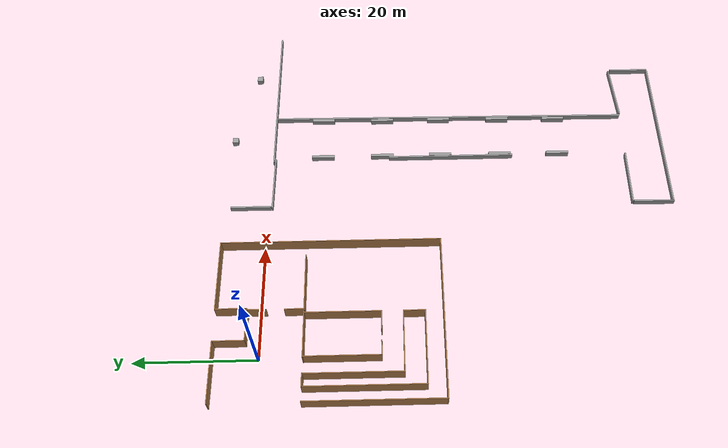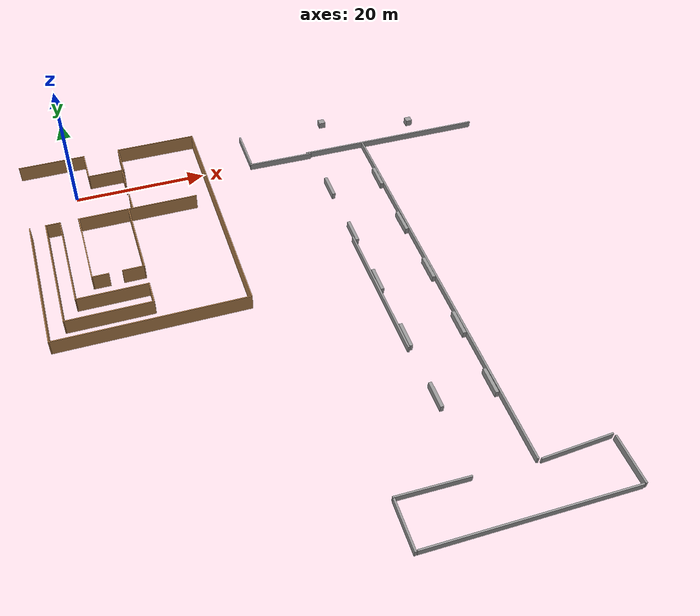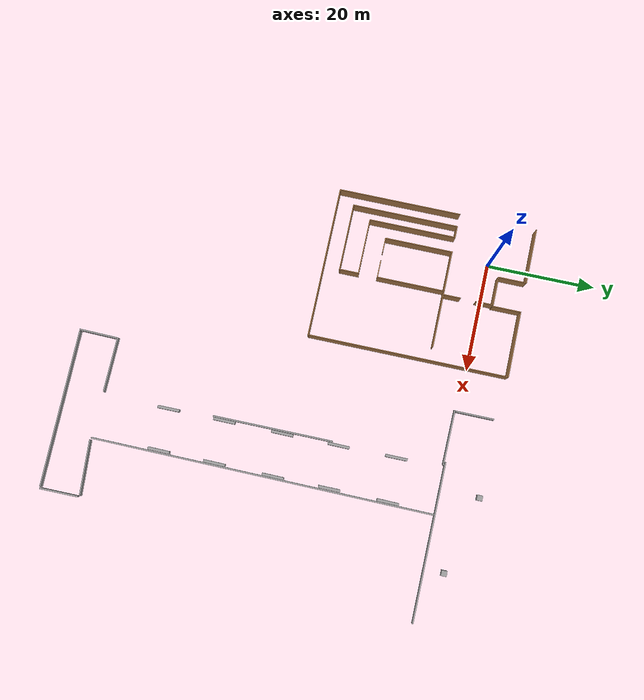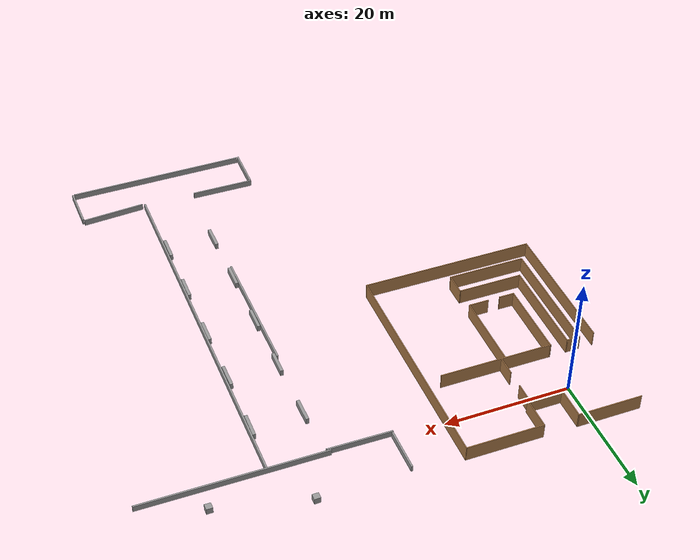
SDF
<sdf version="1.7">
 <world name="default">
  <gravity>0 0 -9.8</gravity>
  <magnetic_field>6e-06 2.3e-05 -4.2e-05</magnetic_field>
  <atmosphere type="adiabatic"/>
  <physics name="default_physics" default="0" type="ode">
   <max_step_size>0.001</max_step_size>
   <real_time_factor>1</real_time_factor>
   <real_time_update_rate>1000</real_time_update_rate>
  </physics>
  <scene>
   <ambient>0.4 0.4 0.4 1</ambient>
   <background>0.7 0.7 0.7 1</background>
   <shadows>1</shadows>
   <grid>0</grid>
   <origin_visual>0</origin_visual>
  </scene>
  <spherical_coordinates>
   <surface_model>EARTH_WGS84</surface_model>
   <latitude_deg>0</latitude_deg>
   <longitude_deg>0</longitude_deg>
   <elevation>0</elevation>
   <heading_deg>0</heading_deg>
  </spherical_coordinates>
  <light name="RetailShop_CeilingLight_001" type="point">
   <pose>2.77442 -3.62815 3.17847 0 -0 0</pose>
   <diffuse>0.5 0.5 0.5 1</diffuse>
   <specular>0.1 0.1 0.1 1</specular>
   <attenuation>
    <range>20</range>
    <constant>0.32</constant>
    <linear>0.01</linear>
    <quadratic>0.03</quadratic>
   </attenuation>
   <cast_shadows>0</cast_shadows>
   <direction>0 0 -1</direction>
   <spot><inner_angle>0</inner_angle><outer_angle>0</outer_angle><falloff>0</falloff></spot>
  </light>
  <light name="RetailShop_CeilingLight_002" type="point">
   <pose>5.38399 -5.38371 3.17847 0 -0 0</pose>
   <diffuse>0.5 0.5 0.5 1</diffuse>
   <specular>0.1 0.1 0.1 1</specular>
   <attenuation>
    <range>20</range>
    <constant>0.32</constant>
    <linear>0.01</linear>
    <quadratic>0.03</quadratic>
   </attenuation>
   <cast_shadows>0</cast_shadows>
   <direction>0 0 -1</direction>
   <spot><inner_angle>0</inner_angle><outer_angle>0</outer_angle><falloff>0</falloff></spot>
  </light>
  <light name="RetailShop_CeilingLight_003" type="point">
   <pose>5.38399 0.04192 3.17847 0 -0 0</pose>
   <diffuse>0.5 0.5 0.5 1</diffuse>
   <specular>0.1 0.1 0.1 1</specular>
   <attenuation>
    <range>20</range>
    <constant>0.32</constant>
    <linear>0.01</linear>
    <quadratic>0.03</quadratic>
   </attenuation>
   <cast_shadows>0</cast_shadows>
   <direction>0 0 -1</direction>
   <spot><inner_angle>0</inner_angle><outer_angle>0</outer_angle><falloff>0</falloff></spot>
  </light>
  <light name="RetailShop_CeilingLight_004" type="point">
   <pose>-3.21067 -5.38371 3.17847 0 -0 0</pose>
   <diffuse>0.5 0.5 0.5 1</diffuse>
   <specular>0.1 0.1 0.1 1</specular>
   <attenuation>
    <range>20</range>
    <constant>0.32</constant>
    <linear>0.01</linear>
    <quadratic>0.03</quadratic>
   </attenuation>
   <cast_shadows>0</cast_shadows>
   <direction>0 0 -1</direction>
   <spot><inner_angle>0</inner_angle><outer_angle>0</outer_angle><falloff>0</falloff></spot>
  </light>
  <light name="RetailShop_CeilingLight_005" type="point">
   <pose>-3.271 2.68593 3.17847 0 -0 0</pose>
   <diffuse>0.5 0.5 0.5 1</diffuse>
   <specular>0.1 0.1 0.1 1</specular>
   <attenuation>
    <range>20</range>
    <constant>0.32</constant>
    <linear>0.01</linear>
    <quadratic>0.03</quadratic>
   </attenuation>
   <cast_shadows>0</cast_shadows>
   <direction>0 0 -1</direction>
   <spot><inner_angle>0</inner_angle><outer_angle>0</outer_angle><falloff>0</falloff></spot>
  </light>
  <light name="RetailShop_CeilingLight_006" type="point">
   <pose>1.4932 4.69237 3.17847 0 -0 0</pose>
   <diffuse>0.5 0.5 0.5 1</diffuse>
   <specular>0.1 0.1 0.1 1</specular>
   <attenuation>
    <range>20</range>
    <constant>0.32</constant>
    <linear>0.01</linear>
    <quadratic>0.03</quadratic>
   </attenuation>
   <cast_shadows>0</cast_shadows>
   <direction>0 0 -1</direction>
   <spot><inner_angle>0</inner_angle><outer_angle>0</outer_angle><falloff>0</falloff></spot>
  </light>
  <audio><device>default</device></audio>
  <model name="wall10">
   <pose>3.93507 3.6415 0 0 -0 0</pose>
   <link name="Wall_36">
    <collision name="Wall_36_Collision">
     <geometry><box><size>5.5 0.15 2.5</size></box></geometry>
     <pose>0 0 1.25 0 -0 0</pose>
    </collision>
    <visual name="Wall_36_Visual">
     <pose>0 0 1.25 0 -0 0</pose>
     <geometry><box><size>5.5 0.15 2.5</size></box></geometry>
     <material>
      <script><uri>file://media/materials/scripts/gazebo.material</uri><name>Gazebo/Wood</name></script>
      <ambient>1 1 1 1</ambient>
     </material>
     <meta><layer>0</layer></meta>
    </visual>
    <pose>1.18507 -1.53348 0 0 -0 6e-06</pose>
   </link>
   <link name="Wall_38">
    <collision name="Wall_38_Collision">
     <geometry><box><size>5.25 0.15 2.5</size></box></geometry>
     <pose>0 0 1.25 0 -0 0</pose>
    </collision>
    <visual name="Wall_38_Visual">
     <pose>0 0 1.25 0 -0 0</pose>
     <geometry><box><size>5.25 0.15 2.5</size></box></geometry>
     <material>
      <script><uri>file://media/materials/scripts/gazebo.material</uri><name>Gazebo/Wood</name></script>
      <ambient>1 1 1 1</ambient>
     </material>
     <meta><layer>0</layer></meta>
    </visual>
    <pose>-1.49007 1.0165 0 0 -0 1.5708</pose>
   </link>
   <static>1</static>
  </model>
  <model name="bigwall1">
   <pose>10.06 -11.092 0 0 -0 0</pose>
   <link name="Wall_40">
    <collision name="Wall_40_Collision">
     <geometry><box><size>5.25 0.15 2.5</size></box></geometry>
     <pose>0 0 1.25 0 -0 0</pose>
    </collision>
    <visual name="Wall_40_Visual">
     <pose>0 0 1.25 0 -0 0</pose>
     <geometry><box><size>5.25 0.15 2.5</size></box></geometry>
     <material>
      <script><uri>file://media/materials/scripts/gazebo.material</uri><name>Gazebo/Wood</name></script>
      <ambient>1 1 1 1</ambient>
     </material>
     <meta><layer>0</layer></meta>
    </visual>
    <pose>-2.115 15.75 0 0 -0 1.5708</pose>
   </link>
   <link name="Wall_42">
    <collision name="Wall_42_Collision">
     <geometry><box><size>12.25 0.15 2.5</size></box></geometry>
     <pose>0 0 1.25 0 -0 0</pose>
    </collision>
    <visual name="Wall_42_Visual">
     <pose>0 0 1.25 0 -0 0</pose>
     <geometry><box><size>12.25 0.15 2.5</size></box></geometry>
     <material>
      <script><uri>file://media/materials/scripts/gazebo.material</uri><name>Gazebo/Wood</name></script>
      <ambient>1 1 1 1</ambient>
     </material>
     <meta><layer>0</layer></meta>
    </visual>
    <pose>3.935 18.3 0 0 -0 0</pose>
   </link>
   <link name="Wall_49">
    <collision name="Wall_49_Collision">
     <geometry><box><size>36.75 0.15 2.5</size></box></geometry>
     <pose>0 0 1.25 0 -0 0</pose>
    </collision>
    <visual name="Wall_49_Visual">
     <pose>0 0 1.25 0 -0 0</pose>
     <geometry><box><size>36.75 0.15 2.5</size></box></geometry>
     <material>
      <script><uri>file://media/materials/scripts/gazebo.material</uri><name>Gazebo/Wood</name></script>
      <ambient>1 1 1 1</ambient>
     </material>
     <meta><layer>0</layer></meta>
    </visual>
    <pose>9.985 0 0 0 -0 -1.5708</pose>
   </link>
   <static>1</static>
  </model>
  <model name="wall_40">
   <pose>-2.605 3.6415 0 0 -0 0</pose>
   <link name="Wall_96">
    <collision name="Wall_96_Collision">
     <geometry><box><size>10.25 0.15 2.5</size></box></geometry>
     <pose>0 0 1.25 0 -0 0</pose>
    </collision>
    <visual name="Wall_96_Visual">
     <pose>0 0 1.25 0 -0 0</pose>
     <geometry><box><size>10.25 0.15 2.5</size></box></geometry>
     <material>
      <script><uri>file://media/materials/scripts/gazebo.material</uri><name>Gazebo/Wood</name></script>
      <ambient>1 1 1 1</ambient>
     </material>
     <meta><layer>0</layer></meta>
    </visual>
    <pose>0 3.5665 0 0 -0 3.14159</pose>
   </link>
   <static>1</static>
  </model>
  <model name="WALL_C">
   <pose>6.195 -14.7335 0 0 -0 0</pose>
   <link name="Wall_98">
    <collision name="Wall_98_Collision">
     <geometry><box><size>27.85 0.15 2.5</size></box></geometry>
     <pose>0 0 1.25 0 -0 0</pose>
    </collision>
    <visual name="Wall_98_Visual">
     <pose>0 0 1.25 0 -0 0</pose>
     <geometry><box><size>27.85 0.15 2.5</size></box></geometry>
     <material>
      <script><uri>file://media/materials/scripts/gazebo.material</uri><name>Gazebo/Wood</name></script>
      <ambient>1 1 1 1</ambient>
     </material>
     <meta><layer>0</layer></meta>
    </visual>
    <pose>-0 -14.6585 0 0 -0 3.14159</pose>
   </link>
   <static>1</static>
  </model>
  <model name="WALL_D">
   <pose>-3.865 -14.7335 0 0 -0 0</pose>
   <link name="Wall_100">
    <collision name="Wall_100_Collision">
     <geometry><box><size>22.5 0.15 2.5</size></box></geometry>
     <pose>0 0 1.25 0 -0 0</pose>
    </collision>
    <visual name="Wall_100_Visual">
     <pose>0 0 1.25 0 -0 0</pose>
     <geometry><box><size>22.5 0.15 2.5</size></box></geometry>
     <material>
      <script><uri>file://media/materials/scripts/gazebo.material</uri><name>Gazebo/Wood</name></script>
      <ambient>1 1 1 1</ambient>
     </material>
     <meta><layer>0</layer></meta>
    </visual>
    <pose>-3.79 -3.4835 0 0 -0 1.5708</pose>
   </link>
   <static>1</static>
  </model>
  <light name="RetailShop_CeilingLight_006_clone" type="point">
   <pose>13.2087 -12.9727 3.17847 0 -0 0</pose>
   <diffuse>0.5 0.5 0.5 1</diffuse>
   <specular>0.1 0.1 0.1 1</specular>
   <direction>0 0 -1</direction>
   <attenuation>
    <range>20</range>
    <constant>0.32</constant>
    <linear>0.01</linear>
    <quadratic>0.03</quadratic>
   </attenuation>
   <cast_shadows>0</cast_shadows>
   <spot><inner_angle>0</inner_angle><outer_angle>0</outer_angle><falloff>0</falloff></spot>
  </light>
  <light name="RetailShop_CeilingLight_001_clone_clone" type="point">
   <pose>13.1607 -16.7337 3.17847 0 -0 0</pose>
   <diffuse>0.5 0.5 0.5 1</diffuse>
   <specular>0.1 0.1 0.1 1</specular>
   <direction>0 0 -1</direction>
   <attenuation>
    <range>20</range>
    <constant>0.32</constant>
    <linear>0.01</linear>
    <quadratic>0.03</quadratic>
   </attenuation>
   <cast_shadows>0</cast_shadows>
   <spot><inner_angle>0</inner_angle><outer_angle>0</outer_angle><falloff>0</falloff></spot>
  </light>
  <light name="RetailShop_CeilingLight_002_clone_clone" type="point">
   <pose>13.1202 -20.5297 3.17847 0 -0 0</pose>
   <diffuse>0.5 0.5 0.5 1</diffuse>
   <specular>0.1 0.1 0.1 1</specular>
   <direction>0 0 -1</direction>
   <attenuation>
    <range>20</range>
    <constant>0.32</constant>
    <linear>0.01</linear>
    <quadratic>0.03</quadratic>
   </attenuation>
   <cast_shadows>0</cast_shadows>
   <spot><inner_angle>0</inner_angle><outer_angle>0</outer_angle><falloff>0</falloff></spot>
  </light>
  <light name="RetailShop_CeilingLight_003_clone_clone" type="point">
   <pose>13.1202 -24.511 3.17847 0 -0 0</pose>
   <diffuse>0.5 0.5 0.5 1</diffuse>
   <specular>0.1 0.1 0.1 1</specular>
   <direction>0 0 -1</direction>
   <attenuation>
    <range>20</range>
    <constant>0.32</constant>
    <linear>0.01</linear>
    <quadratic>0.03</quadratic>
   </attenuation>
   <cast_shadows>0</cast_shadows>
   <spot><inner_angle>0</inner_angle><outer_angle>0</outer_angle><falloff>0</falloff></spot>
  </light>
  <model name="WALL_G">
   <pose>6.097 -3.5585 0 0 -0 0</pose>
   <link name="Wall_0">
    <collision name="Wall_0_Collision">
     <geometry><box><size>2.15 0.15 2.5</size></box></geometry>
     <pose>0 0 1.25 0 -0 0</pose>
    </collision>
    <visual name="Wall_0_Visual">
     <pose>0 0 1.25 0 -0 0</pose>
     <geometry><box><size>2.15 0.15 2.5</size></box></geometry>
     <material>
      <script><uri>file://media/materials/scripts/gazebo.material</uri><name>Gazebo/Wood</name></script>
      <ambient>1 1 1 1</ambient>
     </material>
     <meta><layer>0</layer></meta>
    </visual>
    <pose>-10.297 -3.4835 0 0 -0 0</pose>
   </link>
   <link name="Wall_9">
    <collision name="Wall_9_Collision">
     <geometry><box><size>18 0.15 2.5</size></box></geometry>
     <pose>0 0 1.25 0 -0 0</pose>
    </collision>
    <visual name="Wall_9_Visual">
     <pose>0 0 1.25 0 -0 0</pose>
     <geometry><box><size>18 0.15 2.5</size></box></geometry>
     <material>
      <script><uri>file://media/materials/scripts/gazebo.material</uri><name>Gazebo/Wood</name></script>
      <ambient>1 1 1 1</ambient>
     </material>
     <meta><layer>0</layer></meta>
    </visual>
    <pose>2.372 -3.4835 0 0 -0 0</pose>
   </link>
   <static>1</static>
  </model>
  <model name="WALL_F">
   <pose>3.885 -2.467 0 0 -0 0</pose>
   <link name="Wall_11">
    <collision name="Wall_11_Collision">
     <geometry><box><size>3.25 0.15 2.5</size></box></geometry>
     <pose>0 0 1.25 0 -0 0</pose>
    </collision>
    <visual name="Wall_11_Visual">
     <pose>0 0 1.25 0 -0 0</pose>
     <geometry><box><size>3.25 0.15 2.5</size></box></geometry>
     <material>
      <script><uri>file://media/materials/scripts/gazebo.material</uri><name>Gazebo/Wood</name></script>
      <ambient>1 1 1 1</ambient>
     </material>
     <meta><layer>0</layer></meta>
    </visual>
    <pose>3.81 -3.025 0 0 -0 1.5708</pose>
   </link>
   <link name="Wall_13">
    <collision name="Wall_13_Collision">
     <geometry><box><size>3.25 0.15 2.5</size></box></geometry>
     <pose>0 0 1.25 0 -0 0</pose>
    </collision>
    <visual name="Wall_13_Visual">
     <pose>0 0 1.25 0 -0 0</pose>
     <geometry><box><size>3.25 0.15 2.5</size></box></geometry>
     <material>
      <script><uri>file://media/materials/scripts/gazebo.material</uri><name>Gazebo/Wood</name></script>
      <ambient>1 1 1 1</ambient>
     </material>
     <meta><layer>0</layer></meta>
    </visual>
    <pose>3.81 3.025 0 0 -0 -1.5708</pose>
   </link>
   <static>1</static>
  </model>
  <model name="WALL_H1">
   <pose>0.875 -13.2335 0 0 -0 0</pose>
   <link name="Wall_21">
    <collision name="Wall_21_Collision">
     <geometry><box><size>19.5 0.15 2.5</size></box></geometry>
     <pose>0 0 1.25 0 -0 0</pose>
    </collision>
    <visual name="Wall_21_Visual">
     <pose>0 0 1.25 0 -0 0</pose>
     <geometry><box><size>19.5 0.15 2.5</size></box></geometry>
     <material>
      <script><uri>file://media/materials/scripts/gazebo.material</uri><name>Gazebo/Wood</name></script>
      <ambient>1 1 1 1</ambient>
     </material>
     <meta><layer>0</layer></meta>
    </visual>
    <pose>-6.175 -3.4835 0 0 -0 -1.5708</pose>
   </link>
   <link name="Wall_23">
    <collision name="Wall_23_Collision">
     <geometry><box><size>12.5 0.15 2.5</size></box></geometry>
     <pose>0 0 1.25 0 -0 0</pose>
    </collision>
    <visual name="Wall_23_Visual">
     <pose>0 0 1.25 0 -0 0</pose>
     <geometry><box><size>12.5 0.15 2.5</size></box></geometry>
     <material>
      <script><uri>file://media/materials/scripts/gazebo.material</uri><name>Gazebo/Wood</name></script>
      <ambient>1 1 1 1</ambient>
     </material>
     <meta><layer>0</layer></meta>
    </visual>
    <pose>1e-06 -13.1585 0 0 -0 0</pose>
   </link>
   <static>1</static>
  </model>
  <model name="WALL_I_1">
   <pose>1.925 -13.2335 0 0 -0 0</pose>
   <link name="Wall_27">
    <collision name="Wall_27_Collision">
     <geometry><box><size>16 0.15 2.5</size></box></geometry>
     <pose>0 0 1.25 0 -0 0</pose>
    </collision>
    <visual name="Wall_27_Visual">
     <pose>0 0 1.25 0 -0 0</pose>
     <geometry><box><size>16 0.15 2.5</size></box></geometry>
     <material>
      <script><uri>file://media/materials/scripts/gazebo.material</uri><name>Gazebo/Wood</name></script>
      <ambient>1 1 1 1</ambient>
     </material>
     <meta><layer>0</layer></meta>
    </visual>
    <pose>-5.125 -1.7335 0 0 -0 -1.5708</pose>
   </link>
   <link name="Wall_30">
    <collision name="Wall_30_Collision">
     <geometry><box><size>10.4 0.15 2.5</size></box></geometry>
     <pose>0 0 1.25 0 -0 0</pose>
    </collision>
    <visual name="Wall_30_Visual">
     <pose>0 0 1.25 0 -0 0</pose>
     <geometry><box><size>10.4 0.15 2.5</size></box></geometry>
     <material>
      <script><uri>file://media/materials/scripts/gazebo.material</uri><name>Gazebo/Wood</name></script>
      <ambient>1 1 1 1</ambient>
     </material>
     <meta><layer>0</layer></meta>
    </visual>
    <pose>0 -9.6585 0 0 -0 0</pose>
   </link>
   <link name="Wall_32">
    <collision name="Wall_32_Collision">
     <geometry><box><size>3.65 0.15 2.5</size></box></geometry>
     <pose>0 0 1.25 0 -0 0</pose>
    </collision>
    <visual name="Wall_32_Visual">
     <pose>0 0 1.25 0 -0 0</pose>
     <geometry><box><size>3.65 0.15 2.5</size></box></geometry>
     <material>
      <script><uri>file://media/materials/scripts/gazebo.material</uri><name>Gazebo/Wood</name></script>
      <ambient>1 1 1 1</ambient>
     </material>
     <meta><layer>0</layer></meta>
    </visual>
    <pose>5.125 -11.4085 0 0 -0 -1.5708</pose>
   </link>
   <static>1</static>
  </model>
  <model name="WALL_T1">
   <pose>3.325 -9.7336 0 0 -0 0</pose>
   <link name="Wall_35">
    <collision name="Wall_35_Collision">
     <geometry><box><size>12.5004 0.15 2.5</size></box></geometry>
     <pose>0 0 1.25 0 -0 0</pose>
    </collision>
    <visual name="Wall_35_Visual">
     <pose>0 0 1.25 0 -0 0</pose>
     <geometry><box><size>12.5004 0.15 2.5</size></box></geometry>
     <material>
      <script><uri>file://media/materials/scripts/gazebo.material</uri><name>Gazebo/Wood</name></script>
      <ambient>1 1 1 1</ambient>
     </material>
     <meta><layer>0</layer></meta>
    </visual>
    <pose>-3.725 -3.4834 0 0 -0 -1.5708</pose>
   </link>
   <link name="Wall_40">
    <collision name="Wall_40_Collision">
     <geometry><box><size>2.5 0.15 2.5</size></box></geometry>
     <pose>0 0 1.25 0 -0 0</pose>
    </collision>
    <visual name="Wall_40_Visual">
     <pose>0 0 1.25 0 -0 0</pose>
     <geometry><box><size>2.5 0.15 2.5</size></box></geometry>
     <material>
      <script><uri>file://media/materials/scripts/gazebo.material</uri><name>Gazebo/Wood</name></script>
      <ambient>1 1 1 1</ambient>
     </material>
     <meta><layer>0</layer></meta>
    </visual>
    <pose>-2.55 -9.6584 0 0 -0 0</pose>
   </link>
   <link name="Wall_42">
    <collision name="Wall_42_Collision">
     <geometry><box><size>3.235 0.15 2.5</size></box></geometry>
     <pose>0 0 1.25 0 -0 0</pose>
    </collision>
    <visual name="Wall_42_Visual">
     <pose>0 0 1.25 0 -0 0</pose>
     <geometry><box><size>3.235 0.15 2.5</size></box></geometry>
     <material>
      <script><uri>file://media/materials/scripts/gazebo.material</uri><name>Gazebo/Wood</name></script>
      <ambient>1 1 1 1</ambient>
     </material>
     <meta><layer>0</layer></meta>
    </visual>
    <pose>2.1825 -9.6584 0 0 -0 0</pose>
   </link>
   <link name="Wall_44">
    <collision name="Wall_44_Collision">
     <geometry><box><size>12.5 0.15 2.5</size></box></geometry>
     <pose>0 0 1.25 0 -0 0</pose>
    </collision>
    <visual name="Wall_44_Visual">
     <pose>0 0 1.25 0 -0 0</pose>
     <geometry><box><size>12.5 0.15 2.5</size></box></geometry>
     <material>
      <script><uri>file://media/materials/scripts/gazebo.material</uri><name>Gazebo/Wood</name></script>
      <ambient>1 1 1 1</ambient>
     </material>
     <meta><layer>0</layer></meta>
    </visual>
    <pose>3.725 -3.4834 0 0 -0 1.5708</pose>
   </link>
   <static>1</static>
  </model>
  <light name="RetailShop_CeilingLight_004_clone" type="point">
   <pose>-6.13266 -17.1599 3.17847 0 -0 0</pose>
   <diffuse>0.5 0.5 0.5 1</diffuse>
   <specular>0.1 0.1 0.1 1</specular>
   <direction>0 0 -1</direction>
   <attenuation>
    <range>20</range>
    <constant>0.32</constant>
    <linear>0.01</linear>
    <quadratic>0.03</quadratic>
   </attenuation>
   <cast_shadows>0</cast_shadows>
   <spot><inner_angle>0</inner_angle><outer_angle>0</outer_angle><falloff>0</falloff></spot>
  </light>
  <light name="RetailShop_CeilingLight_005_clone" type="point">
   <pose>0.627461 -27.5951 3.17847 0 -0 0</pose>
   <diffuse>0.5 0.5 0.5 1</diffuse>
   <specular>0.1 0.1 0.1 1</specular>
   <direction>0 0 -1</direction>
   <attenuation>
    <range>20</range>
    <constant>0.32</constant>
    <linear>0.01</linear>
    <quadratic>0.03</quadratic>
   </attenuation>
   <cast_shadows>0</cast_shadows>
   <spot><inner_angle>0</inner_angle><outer_angle>0</outer_angle><falloff>0</falloff></spot>
  </light>
  <light name="RetailShop_CeilingLight_006_clone_0" type="point">
   <pose>-1.27399 -20.3289 3.17847 0 -0 0</pose>
   <diffuse>0.5 0.5 0.5 1</diffuse>
   <specular>0.1 0.1 0.1 1</specular>
   <direction>0 0 -1</direction>
   <attenuation>
    <range>20</range>
    <constant>0.32</constant>
    <linear>0.01</linear>
    <quadratic>0.03</quadratic>
   </attenuation>
   <cast_shadows>0</cast_shadows>
   <spot><inner_angle>0</inner_angle><outer_angle>0</outer_angle><falloff>0</falloff></spot>
  </light>
  <light name="RetailShop_CeilingLight_004_clone_clone" type="point">
   <pose>3.45814 -13.6533 3.17847 0 -0 0</pose>
   <diffuse>0.5 0.5 0.5 1</diffuse>
   <specular>0.1 0.1 0.1 1</specular>
   <direction>0 0 -1</direction>
   <attenuation>
    <range>20</range>
    <constant>0.32</constant>
    <linear>0.01</linear>
    <quadratic>0.03</quadratic>
   </attenuation>
   <cast_shadows>0</cast_shadows>
   <spot><inner_angle>0</inner_angle><outer_angle>0</outer_angle><falloff>0</falloff></spot>
  </light>
  <light name="RetailShop_CeilingLight_005_clone_clone" type="point">
   <pose>13.5136 -0.725148 3.17847 0 -0 0</pose>
   <diffuse>0.5 0.5 0.5 1</diffuse>
   <specular>0.1 0.1 0.1 1</specular>
   <direction>0 0 -1</direction>
   <attenuation>
    <range>20</range>
    <constant>0.32</constant>
    <linear>0.01</linear>
    <quadratic>0.03</quadratic>
   </attenuation>
   <cast_shadows>0</cast_shadows>
   <spot><inner_angle>0</inner_angle><outer_angle>0</outer_angle><falloff>0</falloff></spot>
  </light>
  <model name="unit_box">
   <pose>42.1295 6.56188 0.513382 0 -0 0.000348</pose>
   <link name="link">
    <inertial>
     <mass>1</mass>
     <inertia>
      <ixx>0.166667</ixx>
      <ixy>0</ixy>
      <ixz>0</ixz>
      <iyy>0.166667</iyy>
      <iyz>0</iyz>
      <izz>0.166667</izz>
     </inertia>
    </inertial>
    <collision name="collision"><geometry><box><size>0.999992 1 1</size></box></geometry></collision>
    <visual name="visual">
     <geometry><box><size>0.999992 1 1</size></box></geometry>
     <material>
      <script><name>Gazebo/Grey</name><uri>file://media/materials/scripts/gazebo.material</uri></script>
     </material>
    </visual>
   </link>
  </model>
  <model name="unit_box_0">
   <pose>56.3423 2.93448 0.513382 0 -0 -4e-06</pose>
   <link name="link">
    <inertial>
     <mass>1</mass>
     <inertia>
      <ixx>0.166667</ixx>
      <ixy>0</ixy>
      <ixz>0</ixz>
      <iyy>0.166667</iyy>
      <iyz>0</iyz>
      <izz>0.166667</izz>
     </inertia>
    </inertial>
    <collision name="collision"><geometry><box><size>0.999996 1 1</size></box></geometry></collision>
    <visual name="visual">
     <geometry><box><size>0.999996 1 1</size></box></geometry>
     <material>
      <script><name>Gazebo/Grey</name><uri>file://media/materials/scripts/gazebo.material</uri></script>
     </material>
    </visual>
   </link>
  </model>
  <model name="unit_box_clone">
   <pose>51.5611 -0.673103 0.513382 -0 -0 -0.005685</pose>
   <link name="link">
    <inertial>
     <mass>1</mass>
     <inertia>
      <ixx>0.166667</ixx>
      <ixy>0</ixy>
      <ixz>0</ixz>
      <iyy>0.166667</iyy>
      <iyz>0</iyz>
      <izz>0.166667</izz>
     </inertia>
    </inertial>
    <collision name="collision"><geometry><box><size>28.8041 0.235025 1</size></box></geometry></collision>
    <visual name="visual">
     <geometry><box><size>28.8041 0.235025 1</size></box></geometry>
     <material>
      <script><name>Gazebo/Grey</name><uri>file://media/materials/scripts/gazebo.material</uri></script>
     </material>
    </visual>
   </link>
  </model>
  <model name="unit_box_0_clone">
   <pose>27.8823 2.93225 0.513382 0 -0 -0.000197</pose>
   <link name="link">
    <inertial>
     <mass>1</mass>
     <inertia>
      <ixx>0.166667</ixx>
      <ixy>0</ixy>
      <ixz>0</ixz>
      <iyy>0.166667</iyy>
      <iyz>0</iyz>
      <izz>0.166667</izz>
     </inertia>
    </inertial>
    <collision name="collision"><geometry><box><size>0.276088 6.97492 1</size></box></geometry></collision>
    <visual name="visual">
     <geometry><box><size>0.276088 6.97492 1</size></box></geometry>
     <material>
      <script><name>Gazebo/Grey</name><uri>file://media/materials/scripts/gazebo.material</uri></script>
     </material>
    </visual>
   </link>
  </model>
  <model name="unit_box_clone_clone">
   <pose>32.7487 -0.832308 0.513382 -0 -0 -0.013607</pose>
   <link name="link">
    <inertial>
     <mass>1</mass>
     <inertia>
      <ixx>0.166667</ixx>
      <ixy>0</ixy>
      <ixz>0</ixz>
      <iyy>0.166667</iyy>
      <iyz>0</iyz>
      <izz>0.166667</izz>
     </inertia>
    </inertial>
    <collision name="collision"><geometry><box><size>10.1262 0.235025 1</size></box></geometry></collision>
    <visual name="visual">
     <geometry><box><size>10.1262 0.235025 1</size></box></geometry>
     <material>
      <script><name>Gazebo/Grey</name><uri>file://media/materials/scripts/gazebo.material</uri></script>
     </material>
    </visual>
   </link>
  </model>
  <model name="unit_box_0_clone_0_clone">
   <pose>37.8445 -32.0521 0.513391 0 6.6e-05 0.000377</pose>
   <link name="link">
    <inertial>
     <mass>1</mass>
     <inertia>
      <ixx>0.166667</ixx>
      <ixy>0</ixy>
      <ixz>0</ixz>
      <iyy>0.166667</iyy>
      <iyz>0</iyz>
      <izz>0.166667</izz>
     </inertia>
    </inertial>
    <collision name="collision"><geometry><box><size>0.276088 21.9859 1</size></box></geometry></collision>
    <visual name="visual">
     <geometry><box><size>0.276088 21.9859 1</size></box></geometry>
     <material>
      <script><name>Gazebo/Grey</name><uri>file://media/materials/scripts/gazebo.material</uri></script>
     </material>
    </visual>
   </link>
  </model>
  <model name="unit_box_0_clone_0_clone_clone">
   <pose>46.4965 -32.1013 0.513389 0 5.4e-05 -0.008059</pose>
   <link name="link">
    <inertial>
     <mass>1</mass>
     <inertia>
      <ixx>0.166667</ixx>
      <ixy>0</ixy>
      <ixz>0</ixz>
      <iyy>0.166667</iyy>
      <iyz>0</iyz>
      <izz>0.166667</izz>
     </inertia>
    </inertial>
    <collision name="collision"><geometry><box><size>0.276088 62.6753 1</size></box></geometry></collision>
    <visual name="visual">
     <geometry><box><size>0.276088 62.6753 1</size></box></geometry>
     <material>
      <script><name>Gazebo/Grey</name><uri>file://media/materials/scripts/gazebo.material</uri></script>
     </material>
    </visual>
   </link>
  </model>
  <model name="unit_box_clone_clone_clone">
   <pose>32.6533 -63.2173 0.513382 -1.2e-05 -0 -0.012508</pose>
   <link name="link">
    <inertial>
     <mass>1</mass>
     <inertia>
      <ixx>0.166667</ixx>
      <ixy>0</ixy>
      <ixz>0</ixz>
      <iyy>0.166667</iyy>
      <iyz>0</iyz>
      <izz>0.166667</izz>
     </inertia>
    </inertial>
    <collision name="collision"><geometry><box><size>10.1262 0.235025 1</size></box></geometry></collision>
    <visual name="visual">
     <geometry><box><size>10.1262 0.235025 1</size></box></geometry>
     <material>
      <script><name>Gazebo/Grey</name><uri>file://media/materials/scripts/gazebo.material</uri></script>
     </material>
    </visual>
   </link>
  </model>
  <model name="unit_box_clone_clone_clone_0">
   <pose>51.6818 -63.2151 0.513382 0 -0 0.066098</pose>
   <link name="link">
    <inertial>
     <mass>1</mass>
     <inertia>
      <ixx>0.166667</ixx>
      <ixy>0</ixy>
      <ixz>0</ixz>
      <iyy>0.166667</iyy>
      <iyz>0</iyz>
      <izz>0.166667</izz>
     </inertia>
    </inertial>
    <collision name="collision"><geometry><box><size>10.1262 0.235025 1</size></box></geometry></collision>
    <visual name="visual">
     <geometry><box><size>10.1262 0.235025 1</size></box></geometry>
     <material>
      <script><name>Gazebo/Grey</name><uri>file://media/materials/scripts/gazebo.material</uri></script>
     </material>
    </visual>
   </link>
  </model>
  <model name="unit_box_0_clone_clone">
   <pose>27.6237 -66.8233 0.513382 0 -1e-06 -0.018245</pose>
   <link name="link">
    <inertial>
     <mass>1</mass>
     <inertia>
      <ixx>0.166667</ixx>
      <ixy>0</ixy>
      <ixz>0</ixz>
      <iyy>0.166667</iyy>
      <iyz>0</iyz>
      <izz>0.166667</izz>
     </inertia>
    </inertial>
    <collision name="collision"><geometry><box><size>0.276088 6.97492 1</size></box></geometry></collision>
    <visual name="visual">
     <geometry><box><size>0.276088 6.97492 1</size></box></geometry>
     <material>
      <script><name>Gazebo/Grey</name><uri>file://media/materials/scripts/gazebo.material</uri></script>
     </material>
    </visual>
   </link>
  </model>
  <model name="unit_box_0_clone_clone_0">
   <pose>56.8784 -66.7014 0.513382 0 -0 -0.000357</pose>
   <link name="link">
    <inertial>
     <mass>1</mass>
     <inertia>
      <ixx>0.166667</ixx>
      <ixy>0</ixy>
      <ixz>0</ixz>
      <iyy>0.166667</iyy>
      <iyz>0</iyz>
      <izz>0.166667</izz>
     </inertia>
    </inertial>
    <collision name="collision"><geometry><box><size>0.276088 6.97492 1</size></box></geometry></collision>
    <visual name="visual">
     <geometry><box><size>0.276088 6.97492 1</size></box></geometry>
     <material>
      <script><name>Gazebo/Grey</name><uri>file://media/materials/scripts/gazebo.material</uri></script>
     </material>
    </visual>
   </link>
  </model>
  <model name="unit_box_clone_0">
   <pose>42.2077 -70.1727 0.513372 -4e-06 -2e-06 0.000167</pose>
   <link name="link">
    <inertial>
     <mass>1</mass>
     <inertia>
      <ixx>0.166667</ixx>
      <ixy>0</ixy>
      <ixz>0</ixz>
      <iyy>0.166667</iyy>
      <iyz>0</iyz>
      <izz>0.166667</izz>
     </inertia>
    </inertial>
    <collision name="collision"><geometry><box><size>28.8041 0.235025 1</size></box></geometry></collision>
    <visual name="visual">
     <geometry><box><size>28.8041 0.235025 1</size></box></geometry>
     <material>
      <script><name>Gazebo/Grey</name><uri>file://media/materials/scripts/gazebo.material</uri></script>
     </material>
    </visual>
   </link>
  </model>
  <light name="user_point_light_0" type="point">
   <pose>42.5469 2.99911 1 0 -0 0</pose>
   <diffuse>0.5 0.5 0.5 1</diffuse>
   <specular>0.1 0.1 0.1 1</specular>
   <attenuation>
    <range>20</range>
    <constant>0.5</constant>
    <linear>0.01</linear>
    <quadratic>0.001</quadratic>
   </attenuation>
   <cast_shadows>0</cast_shadows>
   <direction>0 0 -1</direction>
  </light>
  <light name="user_point_light_1" type="point">
   <pose>42.0313 -27.1002 1 0 -0 0</pose>
   <diffuse>0.5 0.5 0.5 1</diffuse>
   <specular>0.1 0.1 0.1 1</specular>
   <attenuation>
    <range>20</range>
    <constant>0.5</constant>
    <linear>0.01</linear>
    <quadratic>0.001</quadratic>
   </attenuation>
   <cast_shadows>0</cast_shadows>
   <direction>0 0 -1</direction>
  </light>
  <light name="user_point_light_2" type="point">
   <pose>42.3187 -49.1011 1 0 -0 0</pose>
   <diffuse>0.5 0.5 0.5 1</diffuse>
   <specular>0.1 0.1 0.1 1</specular>
   <attenuation>
    <range>20</range>
    <constant>0.5</constant>
    <linear>0.01</linear>
    <quadratic>0.001</quadratic>
   </attenuation>
   <cast_shadows>0</cast_shadows>
   <direction>0 0 -1</direction>
  </light>
  <light name="user_point_light_3" type="point">
   <pose>41.6641 -66.5933 1 0 -0 0</pose>
   <diffuse>0.5 0.5 0.5 1</diffuse>
   <specular>0.1 0.1 0.1 1</specular>
   <attenuation>
    <range>20</range>
    <constant>0.5</constant>
    <linear>0.01</linear>
    <quadratic>0.001</quadratic>
   </attenuation>
   <cast_shadows>0</cast_shadows>
   <direction>0 0 -1</direction>
  </light>
  <light name="user_point_light_4" type="point">
   <pose>50.507 -66.5043 1 0 -0 0</pose>
   <diffuse>0.5 0.5 0.5 1</diffuse>
   <specular>0.1 0.1 0.1 1</specular>
   <attenuation>
    <range>20</range>
    <constant>0.5</constant>
    <linear>0.01</linear>
    <quadratic>0.001</quadratic>
   </attenuation>
   <cast_shadows>0</cast_shadows>
   <direction>0 0 -1</direction>
  </light>
  <light name="user_point_light_5" type="point">
   <pose>32.0362 -66.8005 1 0 -0 0</pose>
   <diffuse>0.5 0.5 0.5 1</diffuse>
   <specular>0.1 0.1 0.1 1</specular>
   <attenuation>
    <range>20</range>
    <constant>0.5</constant>
    <linear>0.01</linear>
    <quadratic>0.001</quadratic>
   </attenuation>
   <cast_shadows>0</cast_shadows>
   <direction>0 0 -1</direction>
  </light>
  <light name="user_point_light_6" type="point">
   <pose>42.0916 -56.6378 1 0 -0 0</pose>
   <diffuse>0.5 0.5 0.5 1</diffuse>
   <specular>0.1 0.1 0.1 1</specular>
   <attenuation>
    <range>20</range>
    <constant>0.5</constant>
    <linear>0.01</linear>
    <quadratic>0.001</quadratic>
   </attenuation>
   <cast_shadows>0</cast_shadows>
   <direction>0 0 -1</direction>
  </light>
  <light name="user_point_light_7" type="point">
   <pose>42.4547 -42.2162 1 0 -0 0</pose>
   <diffuse>0.5 0.5 0.5 1</diffuse>
   <specular>0.1 0.1 0.1 1</specular>
   <attenuation>
    <range>20</range>
    <constant>0.5</constant>
    <linear>0.01</linear>
    <quadratic>0.001</quadratic>
   </attenuation>
   <cast_shadows>0</cast_shadows>
   <direction>0 0 -1</direction>
  </light>
  <light name="user_point_light_8" type="point">
   <pose>42.4493 -35.4183 1 0 -0 0</pose>
   <diffuse>0.5 0.5 0.5 1</diffuse>
   <specular>0.1 0.1 0.1 1</specular>
   <attenuation>
    <range>20</range>
    <constant>0.5</constant>
    <linear>0.01</linear>
    <quadratic>0.001</quadratic>
   </attenuation>
   <cast_shadows>0</cast_shadows>
   <direction>0 0 -1</direction>
  </light>
  <light name="user_point_light_9" type="point">
   <pose>42.2182 -17.7531 1 0 -0 0</pose>
   <diffuse>0.5 0.5 0.5 1</diffuse>
   <specular>0.1 0.1 0.1 1</specular>
   <attenuation>
    <range>20</range>
    <constant>0.5</constant>
    <linear>0.01</linear>
    <quadratic>0.001</quadratic>
   </attenuation>
   <cast_shadows>0</cast_shadows>
   <direction>0 0 -1</direction>
  </light>
  <light name="user_point_light_10" type="point">
   <pose>42.1906 -10.7859 1 0 -0 0</pose>
   <diffuse>0.5 0.5 0.5 1</diffuse>
   <specular>0.1 0.1 0.1 1</specular>
   <attenuation>
    <range>20</range>
    <constant>0.5</constant>
    <linear>0.01</linear>
    <quadratic>0.001</quadratic>
   </attenuation>
   <cast_shadows>0</cast_shadows>
   <direction>0 0 -1</direction>
  </light>
  <light name="user_point_light_11" type="point">
   <pose>50.3294 3.10912 1 0 -0 0</pose>
   <diffuse>0.5 0.5 0.5 1</diffuse>
   <specular>0.1 0.1 0.1 1</specular>
   <attenuation>
    <range>20</range>
    <constant>0.5</constant>
    <linear>0.01</linear>
    <quadratic>0.001</quadratic>
   </attenuation>
   <cast_shadows>0</cast_shadows>
   <direction>0 0 -1</direction>
  </light>
  <light name="user_point_light_12" type="point">
   <pose>33.4042 2.90402 1 0 -0 0</pose>
   <diffuse>0.5 0.5 0.5 1</diffuse>
   <specular>0.1 0.1 0.1 1</specular>
   <attenuation>
    <range>20</range>
    <constant>0.5</constant>
    <linear>0.01</linear>
    <quadratic>0.001</quadratic>
   </attenuation>
   <cast_shadows>0</cast_shadows>
   <direction>0 0 -1</direction>
  </light>
  <model name="unit_box_1">
   <pose>46.2708 -9.22324 0.513382 -0 2e-06 -0.020131</pose>
   <link name="link">
    <inertial>
     <mass>1</mass>
     <inertia>
      <ixx>0.166667</ixx>
      <ixy>0</ixy>
      <ixz>0</ixz>
      <iyy>0.166667</iyy>
      <iyz>0</iyz>
      <izz>0.166667</izz>
     </inertia>
    </inertial>
    <collision name="collision"><geometry><box><size>0.496035 3.97627 1</size></box></geometry></collision>
    <visual name="visual">
     <geometry><box><size>0.496035 3.97627 1</size></box></geometry>
     <material>
      <script><name>Gazebo/Grey</name><uri>file://media/materials/scripts/gazebo.material</uri></script>
     </material>
    </visual>
   </link>
  </model>
  <model name="unit_box_1_clone">
   <pose>38.2223 -9.30893 0.513383 0 2e-06 0.000386</pose>
   <link name="link">
    <inertial>
     <mass>1</mass>
     <inertia>
      <ixx>0.166667</ixx>
      <ixy>0</ixy>
      <ixz>0</ixz>
      <iyy>0.166667</iyy>
      <iyz>0</iyz>
      <izz>0.166667</izz>
     </inertia>
    </inertial>
    <collision name="collision"><geometry><box><size>0.496035 3.97627 1</size></box></geometry></collision>
    <visual name="visual">
     <geometry><box><size>0.496035 3.97627 1</size></box></geometry>
     <material>
      <script><name>Gazebo/Grey</name><uri>file://media/materials/scripts/gazebo.material</uri></script>
     </material>
    </visual>
   </link>
  </model>
  <model name="unit_box_1_clone_0">
   <pose>46.131 -19.898 0.513382 0 2e-06 -0.0006</pose>
   <link name="link">
    <inertial>
     <mass>1</mass>
     <inertia>
      <ixx>0.166667</ixx>
      <ixy>0</ixy>
      <ixz>0</ixz>
      <iyy>0.166667</iyy>
      <iyz>0</iyz>
      <izz>0.166667</izz>
     </inertia>
    </inertial>
    <collision name="collision"><geometry><box><size>0.496035 3.97627 1</size></box></geometry></collision>
    <visual name="visual">
     <geometry><box><size>0.496035 3.97627 1</size></box></geometry>
     <material>
      <script><name>Gazebo/Grey</name><uri>file://media/materials/scripts/gazebo.material</uri></script>
     </material>
    </visual>
   </link>
  </model>
  <model name="unit_box_1_clone_1">
   <pose>46.1238 -30.149 0.513379 6e-06 0 -0.009274</pose>
   <link name="link">
    <inertial>
     <mass>1</mass>
     <inertia>
      <ixx>0.166667</ixx>
      <ixy>0</ixy>
      <ixz>0</ixz>
      <iyy>0.166667</iyy>
      <iyz>0</iyz>
      <izz>0.166667</izz>
     </inertia>
    </inertial>
    <collision name="collision"><geometry><box><size>0.496035 3.97627 1</size></box></geometry></collision>
    <visual name="visual">
     <geometry><box><size>0.496035 3.97627 1</size></box></geometry>
     <material>
      <script><name>Gazebo/Grey</name><uri>file://media/materials/scripts/gazebo.material</uri></script>
     </material>
    </visual>
   </link>
  </model>
  <model name="unit_box_1_clone_2">
   <pose>46.0076 -40.8866 0.513372 -0 2e-06 -0.011746</pose>
   <link name="link">
    <inertial>
     <mass>1</mass>
     <inertia>
      <ixx>0.166667</ixx>
      <ixy>0</ixy>
      <ixz>0</ixz>
      <iyy>0.166667</iyy>
      <iyz>0</iyz>
      <izz>0.166667</izz>
     </inertia>
    </inertial>
    <collision name="collision"><geometry><box><size>0.496035 3.97627 1</size></box></geometry></collision>
    <visual name="visual">
     <geometry><box><size>0.496035 3.97627 1</size></box></geometry>
     <material>
      <script><name>Gazebo/Grey</name><uri>file://media/materials/scripts/gazebo.material</uri></script>
     </material>
    </visual>
   </link>
  </model>
  <model name="unit_box_1_clone_2_clone">
   <pose>45.8789 -51.1218 0.513383 -0 -3e-06 -0.011162</pose>
   <link name="link">
    <inertial>
     <mass>1</mass>
     <inertia>
      <ixx>0.166667</ixx>
      <ixy>0</ixy>
      <ixz>0</ixz>
      <iyy>0.166667</iyy>
      <iyz>0</iyz>
      <izz>0.166667</izz>
     </inertia>
    </inertial>
    <collision name="collision"><geometry><box><size>0.496035 3.97627 1</size></box></geometry></collision>
    <visual name="visual">
     <geometry><box><size>0.496035 3.97627 1</size></box></geometry>
     <material>
      <script><name>Gazebo/Grey</name><uri>file://media/materials/scripts/gazebo.material</uri></script>
     </material>
    </visual>
   </link>
  </model>
  <model name="unit_box_1_clone_2_clone_0">
   <pose>38.2869 -19.8522 0.513382 -0 1e-06 -0.008955</pose>
   <link name="link">
    <inertial>
     <mass>1</mass>
     <inertia>
      <ixx>0.166667</ixx>
      <ixy>0</ixy>
      <ixz>0</ixz>
      <iyy>0.166667</iyy>
      <iyz>0</iyz>
      <izz>0.166667</izz>
     </inertia>
    </inertial>
    <collision name="collision"><geometry><box><size>0.496035 3.97627 1</size></box></geometry></collision>
    <visual name="visual">
     <geometry><box><size>0.496035 3.97627 1</size></box></geometry>
     <material>
      <script><name>Gazebo/Grey</name><uri>file://media/materials/scripts/gazebo.material</uri></script>
     </material>
    </visual>
   </link>
  </model>
  <model name="unit_box_1_clone_2_clone_1">
   <pose>38.289 -30.1928 0.513382 0 -3e-06 -0.008991</pose>
   <link name="link">
    <inertial>
     <mass>1</mass>
     <inertia>
      <ixx>0.166667</ixx>
      <ixy>0</ixy>
      <ixz>0</ixz>
      <iyy>0.166667</iyy>
      <iyz>0</iyz>
      <izz>0.166667</izz>
     </inertia>
    </inertial>
    <collision name="collision"><geometry><box><size>0.496035 3.97627 1</size></box></geometry></collision>
    <visual name="visual">
     <geometry><box><size>0.496035 3.97627 1</size></box></geometry>
     <material>
      <script><name>Gazebo/Grey</name><uri>file://media/materials/scripts/gazebo.material</uri></script>
     </material>
    </visual>
   </link>
  </model>
  <model name="unit_box_1_clone_2_clone_2">
   <pose>38.2555 -40.8419 0.513382 0 3e-06 -0.008589</pose>
   <link name="link">
    <inertial>
     <mass>1</mass>
     <inertia>
      <ixx>0.166667</ixx>
      <ixy>0</ixy>
      <ixz>0</ixz>
      <iyy>0.166667</iyy>
      <iyz>0</iyz>
      <izz>0.166667</izz>
     </inertia>
    </inertial>
    <collision name="collision"><geometry><box><size>0.496035 3.97627 1</size></box></geometry></collision>
    <visual name="visual">
     <geometry><box><size>0.496035 3.97627 1</size></box></geometry>
     <material>
      <script><name>Gazebo/Grey</name><uri>file://media/materials/scripts/gazebo.material</uri></script>
     </material>
    </visual>
   </link>
  </model>
  <model name="unit_box_1_clone_2_clone_3">
   <pose>38.2391 -51.1242 0.513382 0 1e-06 0.000416</pose>
   <link name="link">
    <inertial>
     <mass>1</mass>
     <inertia>
      <ixx>0.166667</ixx>
      <ixy>0</ixy>
      <ixz>0</ixz>
      <iyy>0.166667</iyy>
      <iyz>0</iyz>
      <izz>0.166667</izz>
     </inertia>
    </inertial>
    <collision name="collision"><geometry><box><size>0.496035 3.97627 1</size></box></geometry></collision>
    <visual name="visual">
     <geometry><box><size>0.496035 3.97627 1</size></box></geometry>
     <material>
      <script><name>Gazebo/Grey</name><uri>file://media/materials/scripts/gazebo.material</uri></script>
     </material>
    </visual>
   </link>
  </model>
 </world>
</sdf>
